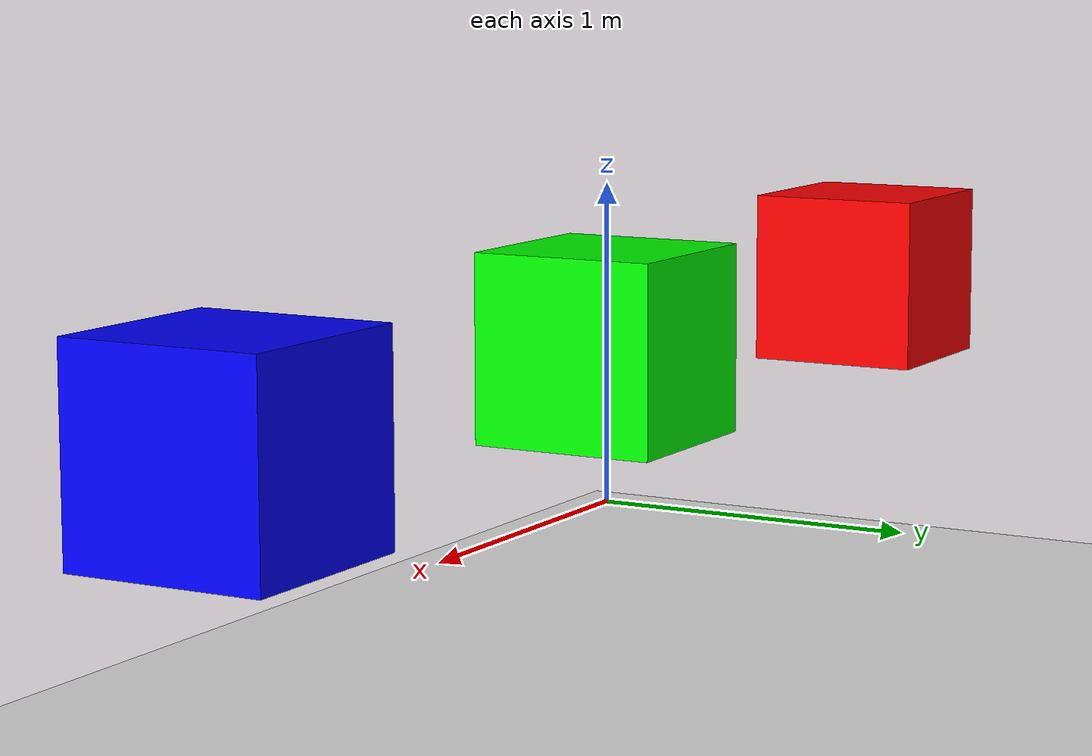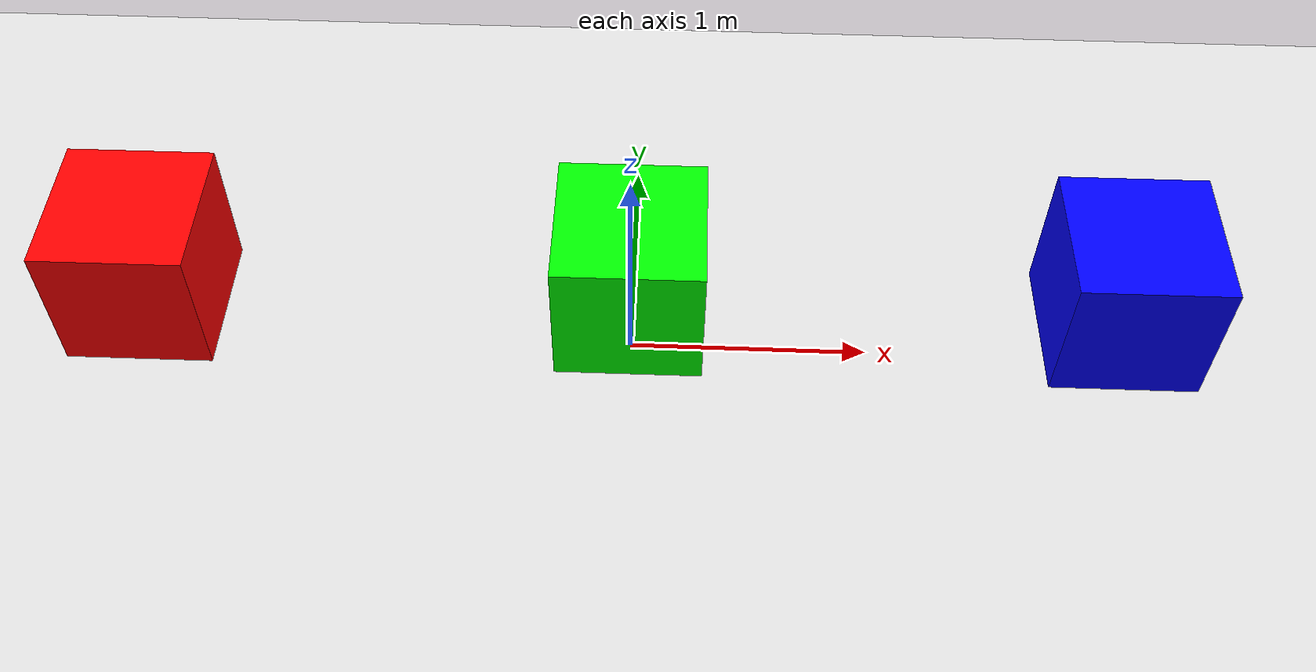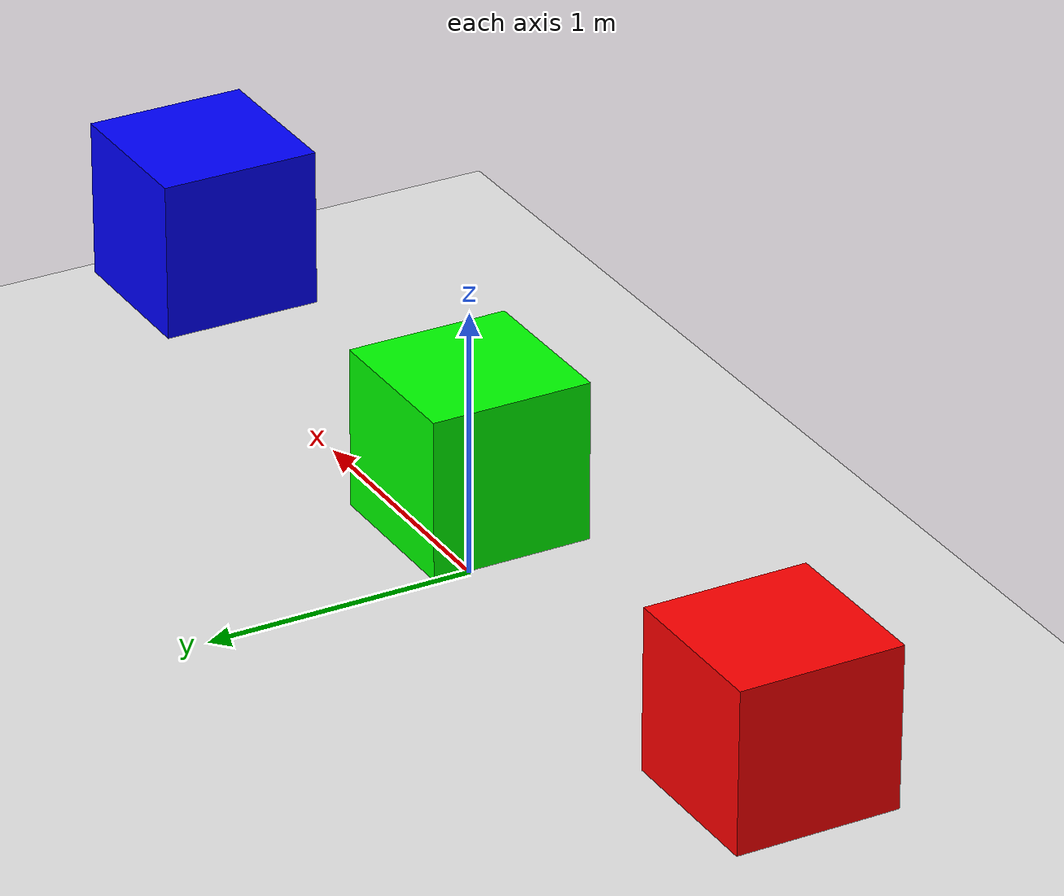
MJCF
<mujoco>
  <option gravity="0 0 -9.81" />
  <worldbody>
    <body name="object_5" pos="0 0 -1">
      <geom type="plane" size="30 30 0.1" rgba="0.9 0.9 0.9 1" />
    </body>
    <body name="object_4" pos="0 0 0">
      <geom type="plane" size="10 10 0.1" rgba="0.8 0.8 0.8 1" />
    </body>
    <body name="object_1" pos="-2 0 0.5">
      <geom type="box" size="0.3 0.3 0.3" mass="1" friction="0.2 0.2 0.2" rgba="1 0 0 1" />
      <joint type="free" name="object_1_joint" />
    </body>
    <body name="object_2" pos="0 0 0.5">
      <geom type="box" size="0.3 0.3 0.3" mass="1" friction="0.5 0.5 0.5" rgba="0 1 0 1" />
      <joint type="free" name="object_2_joint" />
    </body>
    <body name="object_3" pos="2 0 0.5">
      <geom type="box" size="0.3 0.3 0.3" mass="1" friction="1.0 1.0 1.0" rgba="0 0 1 1" />
      <joint type="free" name="object_3_joint" />
    </body>
  </worldbody>
</mujoco>
